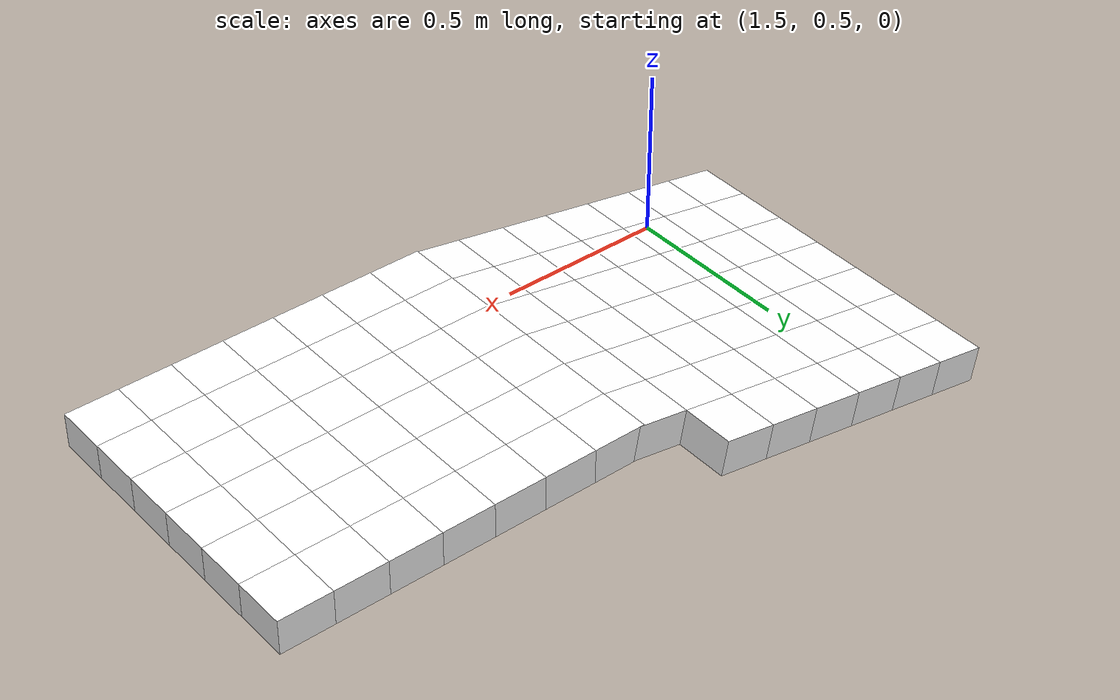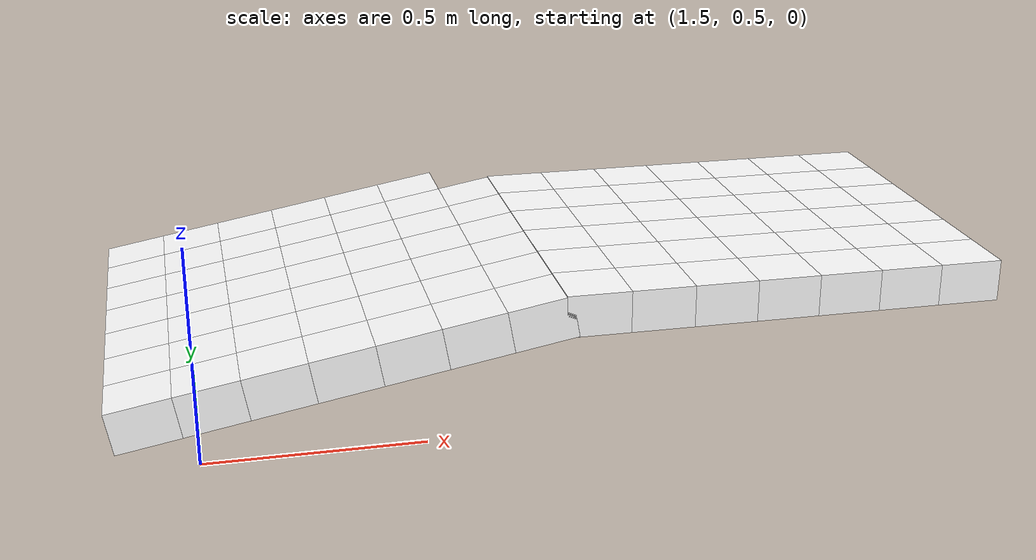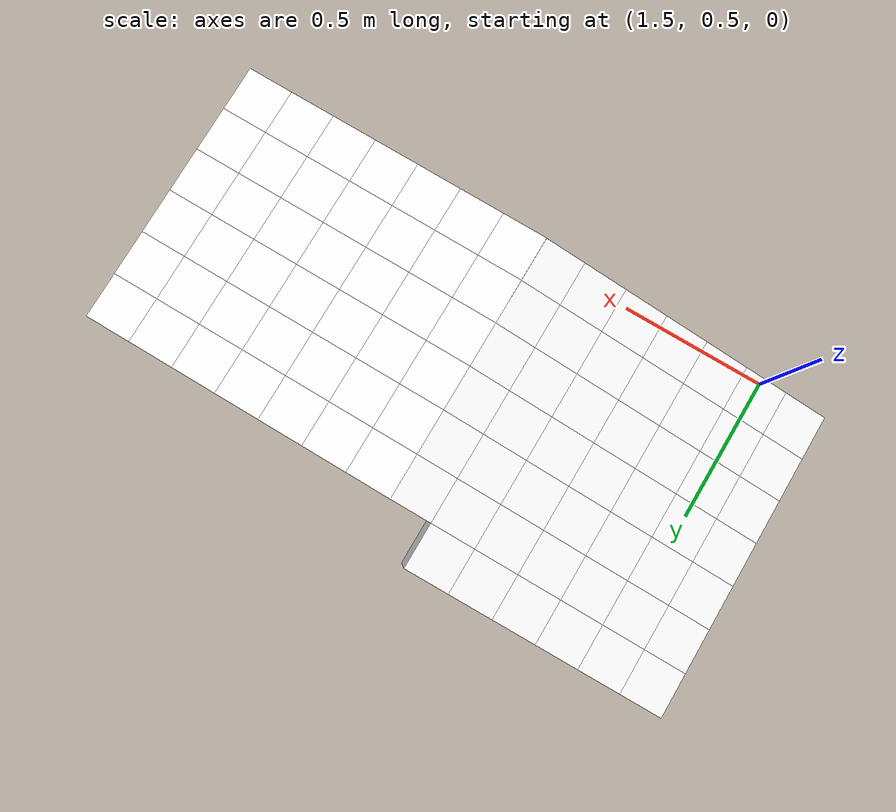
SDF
<sdf version="1.7">
 <world name="default">
  <include><uri>model://sun</uri></include>
  <model name="static_environment">
   <static>true</static>
   <link name="region_403">
    <pose>1.3858879741283245 0.6 0.09089899148607966 0.0 -0.175 0.0</pose>
    <collision name="region_403_collision">
     <geometry><box><size>0.15 0.15 0.1</size></box></geometry>
     <surface><friction><ode><mu>1.0</mu><mu2>1.0</mu2></ode></friction></surface>
    </collision>
    <visual name="region_403_visual">
     <geometry><box><size>0.15 0.15 0.1</size></box></geometry>
     <material><ambient>1.0 1.0 1.0 1.0</ambient><diffuse>1.0 1.0 1.0 1.0</diffuse></material>
    </visual>
   </link>
   <link name="region_404">
    <pose>1.5335969549640645 0.6 0.11701521212511906 0.0 -0.175 0.0</pose>
    <collision name="region_404_collision">
     <geometry><box><size>0.15 0.15 0.1</size></box></geometry>
     <surface><friction><ode><mu>1.0</mu><mu2>1.0</mu2></ode></friction></surface>
    </collision>
    <visual name="region_404_visual">
     <geometry><box><size>0.15 0.15 0.1</size></box></geometry>
     <material><ambient>1.0 1.0 1.0 1.0</ambient><diffuse>1.0 1.0 1.0 1.0</diffuse></material>
    </visual>
   </link>
   <link name="region_405">
    <pose>1.6813059357998044 0.6 0.14313143276415835 0.0 -0.175 0.0</pose>
    <collision name="region_405_collision">
     <geometry><box><size>0.15 0.15 0.1</size></box></geometry>
     <surface><friction><ode><mu>1.0</mu><mu2>1.0</mu2></ode></friction></surface>
    </collision>
    <visual name="region_405_visual">
     <geometry><box><size>0.15 0.15 0.1</size></box></geometry>
     <material><ambient>1.0 1.0 1.0 1.0</ambient><diffuse>1.0 1.0 1.0 1.0</diffuse></material>
    </visual>
   </link>
   <link name="region_406">
    <pose>1.8290149166355443 0.6 0.16924765340319775 0.0 -0.175 0.0</pose>
    <collision name="region_406_collision">
     <geometry><box><size>0.15 0.15 0.1</size></box></geometry>
     <surface><friction><ode><mu>1.0</mu><mu2>1.0</mu2></ode></friction></surface>
    </collision>
    <visual name="region_406_visual">
     <geometry><box><size>0.15 0.15 0.1</size></box></geometry>
     <material><ambient>1.0 1.0 1.0 1.0</ambient><diffuse>1.0 1.0 1.0 1.0</diffuse></material>
    </visual>
   </link>
   <link name="region_407">
    <pose>1.9767238974712842 0.6 0.19536387404223715 0.0 -0.175 0.0</pose>
    <collision name="region_407_collision">
     <geometry><box><size>0.15 0.15 0.1</size></box></geometry>
     <surface><friction><ode><mu>1.0</mu><mu2>1.0</mu2></ode></friction></surface>
    </collision>
    <visual name="region_407_visual">
     <geometry><box><size>0.15 0.15 0.1</size></box></geometry>
     <material><ambient>1.0 1.0 1.0 1.0</ambient><diffuse>1.0 1.0 1.0 1.0</diffuse></material>
    </visual>
   </link>
   <link name="region_408">
    <pose>2.124432878307025 0.6 0.22148009468127655 0.0 -0.175 0.0</pose>
    <collision name="region_408_collision">
     <geometry><box><size>0.15 0.15 0.1</size></box></geometry>
     <surface><friction><ode><mu>1.0</mu><mu2>1.0</mu2></ode></friction></surface>
    </collision>
    <visual name="region_408_visual">
     <geometry><box><size>0.15 0.15 0.1</size></box></geometry>
     <material><ambient>1.0 1.0 1.0 1.0</ambient><diffuse>1.0 1.0 1.0 1.0</diffuse></material>
    </visual>
   </link>
   <link name="region_409">
    <pose>2.2721418591427653 0.6 0.24759631532031606 0.0 -0.175 0.0</pose>
    <collision name="region_409_collision">
     <geometry><box><size>0.15 0.15 0.1</size></box></geometry>
     <surface><friction><ode><mu>1.0</mu><mu2>1.0</mu2></ode></friction></surface>
    </collision>
    <visual name="region_409_visual">
     <geometry><box><size>0.15 0.15 0.1</size></box></geometry>
     <material><ambient>1.0 1.0 1.0 1.0</ambient><diffuse>1.0 1.0 1.0 1.0</diffuse></material>
    </visual>
   </link>
   <link name="region_413">
    <pose>1.3858879741283245 0.75 0.09089899148607966 0.0 -0.175 0.0</pose>
    <collision name="region_413_collision">
     <geometry><box><size>0.15 0.15 0.1</size></box></geometry>
     <surface><friction><ode><mu>1.0</mu><mu2>1.0</mu2></ode></friction></surface>
    </collision>
    <visual name="region_413_visual">
     <geometry><box><size>0.15 0.15 0.1</size></box></geometry>
     <material><ambient>1.0 1.0 1.0 1.0</ambient><diffuse>1.0 1.0 1.0 1.0</diffuse></material>
    </visual>
   </link>
   <link name="region_414">
    <pose>1.5335969549640645 0.75 0.11701521212511906 0.0 -0.175 0.0</pose>
    <collision name="region_414_collision">
     <geometry><box><size>0.15 0.15 0.1</size></box></geometry>
     <surface><friction><ode><mu>1.0</mu><mu2>1.0</mu2></ode></friction></surface>
    </collision>
    <visual name="region_414_visual">
     <geometry><box><size>0.15 0.15 0.1</size></box></geometry>
     <material><ambient>1.0 1.0 1.0 1.0</ambient><diffuse>1.0 1.0 1.0 1.0</diffuse></material>
    </visual>
   </link>
   <link name="region_415">
    <pose>1.6813059357998044 0.75 0.14313143276415835 0.0 -0.175 0.0</pose>
    <collision name="region_415_collision">
     <geometry><box><size>0.15 0.15 0.1</size></box></geometry>
     <surface><friction><ode><mu>1.0</mu><mu2>1.0</mu2></ode></friction></surface>
    </collision>
    <visual name="region_415_visual">
     <geometry><box><size>0.15 0.15 0.1</size></box></geometry>
     <material><ambient>1.0 1.0 1.0 1.0</ambient><diffuse>1.0 1.0 1.0 1.0</diffuse></material>
    </visual>
   </link>
   <link name="region_416">
    <pose>1.8290149166355443 0.75 0.16924765340319775 0.0 -0.175 0.0</pose>
    <collision name="region_416_collision">
     <geometry><box><size>0.15 0.15 0.1</size></box></geometry>
     <surface><friction><ode><mu>1.0</mu><mu2>1.0</mu2></ode></friction></surface>
    </collision>
    <visual name="region_416_visual">
     <geometry><box><size>0.15 0.15 0.1</size></box></geometry>
     <material><ambient>1.0 1.0 1.0 1.0</ambient><diffuse>1.0 1.0 1.0 1.0</diffuse></material>
    </visual>
   </link>
   <link name="region_417">
    <pose>1.9767238974712842 0.75 0.19536387404223715 0.0 -0.175 0.0</pose>
    <collision name="region_417_collision">
     <geometry><box><size>0.15 0.15 0.1</size></box></geometry>
     <surface><friction><ode><mu>1.0</mu><mu2>1.0</mu2></ode></friction></surface>
    </collision>
    <visual name="region_417_visual">
     <geometry><box><size>0.15 0.15 0.1</size></box></geometry>
     <material><ambient>1.0 1.0 1.0 1.0</ambient><diffuse>1.0 1.0 1.0 1.0</diffuse></material>
    </visual>
   </link>
   <link name="region_418">
    <pose>2.124432878307025 0.75 0.22148009468127655 0.0 -0.175 0.0</pose>
    <collision name="region_418_collision">
     <geometry><box><size>0.15 0.15 0.1</size></box></geometry>
     <surface><friction><ode><mu>1.0</mu><mu2>1.0</mu2></ode></friction></surface>
    </collision>
    <visual name="region_418_visual">
     <geometry><box><size>0.15 0.15 0.1</size></box></geometry>
     <material><ambient>1.0 1.0 1.0 1.0</ambient><diffuse>1.0 1.0 1.0 1.0</diffuse></material>
    </visual>
   </link>
   <link name="region_419">
    <pose>2.2721418591427653 0.75 0.24759631532031606 0.0 -0.175 0.0</pose>
    <collision name="region_419_collision">
     <geometry><box><size>0.15 0.15 0.1</size></box></geometry>
     <surface><friction><ode><mu>1.0</mu><mu2>1.0</mu2></ode></friction></surface>
    </collision>
    <visual name="region_419_visual">
     <geometry><box><size>0.15 0.15 0.1</size></box></geometry>
     <material><ambient>1.0 1.0 1.0 1.0</ambient><diffuse>1.0 1.0 1.0 1.0</diffuse></material>
    </visual>
   </link>
   <link name="region_423">
    <pose>1.3858879741283245 0.8999999999999999 0.09089899148607966 0.0 -0.175 0.0</pose>
    <collision name="region_423_collision">
     <geometry><box><size>0.15 0.15 0.1</size></box></geometry>
     <surface><friction><ode><mu>1.0</mu><mu2>1.0</mu2></ode></friction></surface>
    </collision>
    <visual name="region_423_visual">
     <geometry><box><size>0.15 0.15 0.1</size></box></geometry>
     <material><ambient>1.0 1.0 1.0 1.0</ambient><diffuse>1.0 1.0 1.0 1.0</diffuse></material>
    </visual>
   </link>
   <link name="region_424">
    <pose>1.5335969549640645 0.8999999999999999 0.11701521212511906 0.0 -0.175 0.0</pose>
    <collision name="region_424_collision">
     <geometry><box><size>0.15 0.15 0.1</size></box></geometry>
     <surface><friction><ode><mu>1.0</mu><mu2>1.0</mu2></ode></friction></surface>
    </collision>
    <visual name="region_424_visual">
     <geometry><box><size>0.15 0.15 0.1</size></box></geometry>
     <material><ambient>1.0 1.0 1.0 1.0</ambient><diffuse>1.0 1.0 1.0 1.0</diffuse></material>
    </visual>
   </link>
   <link name="region_425">
    <pose>1.6813059357998044 0.8999999999999999 0.14313143276415835 0.0 -0.175 0.0</pose>
    <collision name="region_425_collision">
     <geometry><box><size>0.15 0.15 0.1</size></box></geometry>
     <surface><friction><ode><mu>1.0</mu><mu2>1.0</mu2></ode></friction></surface>
    </collision>
    <visual name="region_425_visual">
     <geometry><box><size>0.15 0.15 0.1</size></box></geometry>
     <material><ambient>1.0 1.0 1.0 1.0</ambient><diffuse>1.0 1.0 1.0 1.0</diffuse></material>
    </visual>
   </link>
   <link name="region_426">
    <pose>1.8290149166355443 0.8999999999999999 0.16924765340319775 0.0 -0.175 0.0</pose>
    <collision name="region_426_collision">
     <geometry><box><size>0.15 0.15 0.1</size></box></geometry>
     <surface><friction><ode><mu>1.0</mu><mu2>1.0</mu2></ode></friction></surface>
    </collision>
    <visual name="region_426_visual">
     <geometry><box><size>0.15 0.15 0.1</size></box></geometry>
     <material><ambient>1.0 1.0 1.0 1.0</ambient><diffuse>1.0 1.0 1.0 1.0</diffuse></material>
    </visual>
   </link>
   <link name="region_427">
    <pose>1.9767238974712842 0.8999999999999999 0.19536387404223715 0.0 -0.175 0.0</pose>
    <collision name="region_427_collision">
     <geometry><box><size>0.15 0.15 0.1</size></box></geometry>
     <surface><friction><ode><mu>1.0</mu><mu2>1.0</mu2></ode></friction></surface>
    </collision>
    <visual name="region_427_visual">
     <geometry><box><size>0.15 0.15 0.1</size></box></geometry>
     <material><ambient>1.0 1.0 1.0 1.0</ambient><diffuse>1.0 1.0 1.0 1.0</diffuse></material>
    </visual>
   </link>
   <link name="region_428">
    <pose>2.124432878307025 0.8999999999999999 0.22148009468127655 0.0 -0.175 0.0</pose>
    <collision name="region_428_collision">
     <geometry><box><size>0.15 0.15 0.1</size></box></geometry>
     <surface><friction><ode><mu>1.0</mu><mu2>1.0</mu2></ode></friction></surface>
    </collision>
    <visual name="region_428_visual">
     <geometry><box><size>0.15 0.15 0.1</size></box></geometry>
     <material><ambient>1.0 1.0 1.0 1.0</ambient><diffuse>1.0 1.0 1.0 1.0</diffuse></material>
    </visual>
   </link>
   <link name="region_429">
    <pose>2.2721418591427653 0.8999999999999999 0.24759631532031606 0.0 -0.175 0.0</pose>
    <collision name="region_429_collision">
     <geometry><box><size>0.15 0.15 0.1</size></box></geometry>
     <surface><friction><ode><mu>1.0</mu><mu2>1.0</mu2></ode></friction></surface>
    </collision>
    <visual name="region_429_visual">
     <geometry><box><size>0.15 0.15 0.1</size></box></geometry>
     <material><ambient>1.0 1.0 1.0 1.0</ambient><diffuse>1.0 1.0 1.0 1.0</diffuse></material>
    </visual>
   </link>
   <link name="region_433">
    <pose>1.3858879741283245 1.0499999999999998 0.09089899148607966 0.0 -0.175 0.0</pose>
    <collision name="region_433_collision">
     <geometry><box><size>0.15 0.15 0.1</size></box></geometry>
     <surface><friction><ode><mu>1.0</mu><mu2>1.0</mu2></ode></friction></surface>
    </collision>
    <visual name="region_433_visual">
     <geometry><box><size>0.15 0.15 0.1</size></box></geometry>
     <material><ambient>1.0 1.0 1.0 1.0</ambient><diffuse>1.0 1.0 1.0 1.0</diffuse></material>
    </visual>
   </link>
   <link name="region_434">
    <pose>1.5335969549640645 1.0499999999999998 0.11701521212511906 0.0 -0.175 0.0</pose>
    <collision name="region_434_collision">
     <geometry><box><size>0.15 0.15 0.1</size></box></geometry>
     <surface><friction><ode><mu>1.0</mu><mu2>1.0</mu2></ode></friction></surface>
    </collision>
    <visual name="region_434_visual">
     <geometry><box><size>0.15 0.15 0.1</size></box></geometry>
     <material><ambient>1.0 1.0 1.0 1.0</ambient><diffuse>1.0 1.0 1.0 1.0</diffuse></material>
    </visual>
   </link>
   <link name="region_435">
    <pose>1.6813059357998044 1.0499999999999998 0.14313143276415835 0.0 -0.175 0.0</pose>
    <collision name="region_435_collision">
     <geometry><box><size>0.15 0.15 0.1</size></box></geometry>
     <surface><friction><ode><mu>1.0</mu><mu2>1.0</mu2></ode></friction></surface>
    </collision>
    <visual name="region_435_visual">
     <geometry><box><size>0.15 0.15 0.1</size></box></geometry>
     <material><ambient>1.0 1.0 1.0 1.0</ambient><diffuse>1.0 1.0 1.0 1.0</diffuse></material>
    </visual>
   </link>
   <link name="region_436">
    <pose>1.8290149166355443 1.0499999999999998 0.16924765340319775 0.0 -0.175 0.0</pose>
    <collision name="region_436_collision">
     <geometry><box><size>0.15 0.15 0.1</size></box></geometry>
     <surface><friction><ode><mu>1.0</mu><mu2>1.0</mu2></ode></friction></surface>
    </collision>
    <visual name="region_436_visual">
     <geometry><box><size>0.15 0.15 0.1</size></box></geometry>
     <material><ambient>1.0 1.0 1.0 1.0</ambient><diffuse>1.0 1.0 1.0 1.0</diffuse></material>
    </visual>
   </link>
   <link name="region_437">
    <pose>1.9767238974712842 1.0499999999999998 0.19536387404223715 0.0 -0.175 0.0</pose>
    <collision name="region_437_collision">
     <geometry><box><size>0.15 0.15 0.1</size></box></geometry>
     <surface><friction><ode><mu>1.0</mu><mu2>1.0</mu2></ode></friction></surface>
    </collision>
    <visual name="region_437_visual">
     <geometry><box><size>0.15 0.15 0.1</size></box></geometry>
     <material><ambient>1.0 1.0 1.0 1.0</ambient><diffuse>1.0 1.0 1.0 1.0</diffuse></material>
    </visual>
   </link>
   <link name="region_438">
    <pose>2.124432878307025 1.0499999999999998 0.22148009468127655 0.0 -0.175 0.0</pose>
    <collision name="region_438_collision">
     <geometry><box><size>0.15 0.15 0.1</size></box></geometry>
     <surface><friction><ode><mu>1.0</mu><mu2>1.0</mu2></ode></friction></surface>
    </collision>
    <visual name="region_438_visual">
     <geometry><box><size>0.15 0.15 0.1</size></box></geometry>
     <material><ambient>1.0 1.0 1.0 1.0</ambient><diffuse>1.0 1.0 1.0 1.0</diffuse></material>
    </visual>
   </link>
   <link name="region_439">
    <pose>2.2721418591427653 1.0499999999999998 0.24759631532031606 0.0 -0.175 0.0</pose>
    <collision name="region_439_collision">
     <geometry><box><size>0.15 0.15 0.1</size></box></geometry>
     <surface><friction><ode><mu>1.0</mu><mu2>1.0</mu2></ode></friction></surface>
    </collision>
    <visual name="region_439_visual">
     <geometry><box><size>0.15 0.15 0.1</size></box></geometry>
     <material><ambient>1.0 1.0 1.0 1.0</ambient><diffuse>1.0 1.0 1.0 1.0</diffuse></material>
    </visual>
   </link>
   <link name="region_443">
    <pose>1.3858879741283245 1.2 0.09089899148607966 0.0 -0.175 0.0</pose>
    <collision name="region_443_collision">
     <geometry><box><size>0.15 0.15 0.1</size></box></geometry>
     <surface><friction><ode><mu>1.0</mu><mu2>1.0</mu2></ode></friction></surface>
    </collision>
    <visual name="region_443_visual">
     <geometry><box><size>0.15 0.15 0.1</size></box></geometry>
     <material><ambient>1.0 1.0 1.0 1.0</ambient><diffuse>1.0 1.0 1.0 1.0</diffuse></material>
    </visual>
   </link>
   <link name="region_444">
    <pose>1.5335969549640645 1.2 0.11701521212511906 0.0 -0.175 0.0</pose>
    <collision name="region_444_collision">
     <geometry><box><size>0.15 0.15 0.1</size></box></geometry>
     <surface><friction><ode><mu>1.0</mu><mu2>1.0</mu2></ode></friction></surface>
    </collision>
    <visual name="region_444_visual">
     <geometry><box><size>0.15 0.15 0.1</size></box></geometry>
     <material><ambient>1.0 1.0 1.0 1.0</ambient><diffuse>1.0 1.0 1.0 1.0</diffuse></material>
    </visual>
   </link>
   <link name="region_445">
    <pose>1.6813059357998044 1.2 0.14313143276415835 0.0 -0.175 0.0</pose>
    <collision name="region_445_collision">
     <geometry><box><size>0.15 0.15 0.1</size></box></geometry>
     <surface><friction><ode><mu>1.0</mu><mu2>1.0</mu2></ode></friction></surface>
    </collision>
    <visual name="region_445_visual">
     <geometry><box><size>0.15 0.15 0.1</size></box></geometry>
     <material><ambient>1.0 1.0 1.0 1.0</ambient><diffuse>1.0 1.0 1.0 1.0</diffuse></material>
    </visual>
   </link>
   <link name="region_446">
    <pose>1.8290149166355443 1.2 0.16924765340319775 0.0 -0.175 0.0</pose>
    <collision name="region_446_collision">
     <geometry><box><size>0.15 0.15 0.1</size></box></geometry>
     <surface><friction><ode><mu>1.0</mu><mu2>1.0</mu2></ode></friction></surface>
    </collision>
    <visual name="region_446_visual">
     <geometry><box><size>0.15 0.15 0.1</size></box></geometry>
     <material><ambient>1.0 1.0 1.0 1.0</ambient><diffuse>1.0 1.0 1.0 1.0</diffuse></material>
    </visual>
   </link>
   <link name="region_447">
    <pose>1.9767238974712842 1.2 0.19536387404223715 0.0 -0.175 0.0</pose>
    <collision name="region_447_collision">
     <geometry><box><size>0.15 0.15 0.1</size></box></geometry>
     <surface><friction><ode><mu>1.0</mu><mu2>1.0</mu2></ode></friction></surface>
    </collision>
    <visual name="region_447_visual">
     <geometry><box><size>0.15 0.15 0.1</size></box></geometry>
     <material><ambient>1.0 1.0 1.0 1.0</ambient><diffuse>1.0 1.0 1.0 1.0</diffuse></material>
    </visual>
   </link>
   <link name="region_448">
    <pose>2.124432878307025 1.2 0.22148009468127655 0.0 -0.175 0.0</pose>
    <collision name="region_448_collision">
     <geometry><box><size>0.15 0.15 0.1</size></box></geometry>
     <surface><friction><ode><mu>1.0</mu><mu2>1.0</mu2></ode></friction></surface>
    </collision>
    <visual name="region_448_visual">
     <geometry><box><size>0.15 0.15 0.1</size></box></geometry>
     <material><ambient>1.0 1.0 1.0 1.0</ambient><diffuse>1.0 1.0 1.0 1.0</diffuse></material>
    </visual>
   </link>
   <link name="region_449">
    <pose>2.2721418591427653 1.2 0.24759631532031606 0.0 -0.175 0.0</pose>
    <collision name="region_449_collision">
     <geometry><box><size>0.15 0.15 0.1</size></box></geometry>
     <surface><friction><ode><mu>1.0</mu><mu2>1.0</mu2></ode></friction></surface>
    </collision>
    <visual name="region_449_visual">
     <geometry><box><size>0.15 0.15 0.1</size></box></geometry>
     <material><ambient>1.0 1.0 1.0 1.0</ambient><diffuse>1.0 1.0 1.0 1.0</diffuse></material>
    </visual>
   </link>
   <link name="region_453">
    <pose>1.3858879741283245 1.35 0.09089899148607966 0.0 -0.175 0.0</pose>
    <collision name="region_453_collision">
     <geometry><box><size>0.15 0.15 0.1</size></box></geometry>
     <surface><friction><ode><mu>1.0</mu><mu2>1.0</mu2></ode></friction></surface>
    </collision>
    <visual name="region_453_visual">
     <geometry><box><size>0.15 0.15 0.1</size></box></geometry>
     <material><ambient>1.0 1.0 1.0 1.0</ambient><diffuse>1.0 1.0 1.0 1.0</diffuse></material>
    </visual>
   </link>
   <link name="region_454">
    <pose>1.5335969549640645 1.35 0.11701521212511906 0.0 -0.175 0.0</pose>
    <collision name="region_454_collision">
     <geometry><box><size>0.15 0.15 0.1</size></box></geometry>
     <surface><friction><ode><mu>1.0</mu><mu2>1.0</mu2></ode></friction></surface>
    </collision>
    <visual name="region_454_visual">
     <geometry><box><size>0.15 0.15 0.1</size></box></geometry>
     <material><ambient>1.0 1.0 1.0 1.0</ambient><diffuse>1.0 1.0 1.0 1.0</diffuse></material>
    </visual>
   </link>
   <link name="region_455">
    <pose>1.6813059357998044 1.35 0.14313143276415835 0.0 -0.175 0.0</pose>
    <collision name="region_455_collision">
     <geometry><box><size>0.15 0.15 0.1</size></box></geometry>
     <surface><friction><ode><mu>1.0</mu><mu2>1.0</mu2></ode></friction></surface>
    </collision>
    <visual name="region_455_visual">
     <geometry><box><size>0.15 0.15 0.1</size></box></geometry>
     <material><ambient>1.0 1.0 1.0 1.0</ambient><diffuse>1.0 1.0 1.0 1.0</diffuse></material>
    </visual>
   </link>
   <link name="region_456">
    <pose>1.8290149166355443 1.35 0.16924765340319775 0.0 -0.175 0.0</pose>
    <collision name="region_456_collision">
     <geometry><box><size>0.15 0.15 0.1</size></box></geometry>
     <surface><friction><ode><mu>1.0</mu><mu2>1.0</mu2></ode></friction></surface>
    </collision>
    <visual name="region_456_visual">
     <geometry><box><size>0.15 0.15 0.1</size></box></geometry>
     <material><ambient>1.0 1.0 1.0 1.0</ambient><diffuse>1.0 1.0 1.0 1.0</diffuse></material>
    </visual>
   </link>
   <link name="region_457">
    <pose>1.9767238974712842 1.35 0.19536387404223715 0.0 -0.175 0.0</pose>
    <collision name="region_457_collision">
     <geometry><box><size>0.15 0.15 0.1</size></box></geometry>
     <surface><friction><ode><mu>1.0</mu><mu2>1.0</mu2></ode></friction></surface>
    </collision>
    <visual name="region_457_visual">
     <geometry><box><size>0.15 0.15 0.1</size></box></geometry>
     <material><ambient>1.0 1.0 1.0 1.0</ambient><diffuse>1.0 1.0 1.0 1.0</diffuse></material>
    </visual>
   </link>
   <link name="region_458">
    <pose>2.124432878307025 1.35 0.22148009468127655 0.0 -0.175 0.0</pose>
    <collision name="region_458_collision">
     <geometry><box><size>0.15 0.15 0.1</size></box></geometry>
     <surface><friction><ode><mu>1.0</mu><mu2>1.0</mu2></ode></friction></surface>
    </collision>
    <visual name="region_458_visual">
     <geometry><box><size>0.15 0.15 0.1</size></box></geometry>
     <material><ambient>1.0 1.0 1.0 1.0</ambient><diffuse>1.0 1.0 1.0 1.0</diffuse></material>
    </visual>
   </link>
   <link name="region_459">
    <pose>2.2721418591427653 1.35 0.24759631532031606 0.0 -0.175 0.0</pose>
    <collision name="region_459_collision">
     <geometry><box><size>0.15 0.15 0.1</size></box></geometry>
     <surface><friction><ode><mu>1.0</mu><mu2>1.0</mu2></ode></friction></surface>
    </collision>
    <visual name="region_459_visual">
     <geometry><box><size>0.15 0.15 0.1</size></box></geometry>
     <material><ambient>1.0 1.0 1.0 1.0</ambient><diffuse>1.0 1.0 1.0 1.0</diffuse></material>
    </visual>
   </link>
   <link name="region_463">
    <pose>1.3858879741283245 1.5 0.09089899148607966 0.0 -0.175 0.0</pose>
    <collision name="region_463_collision">
     <geometry><box><size>0.15 0.15 0.1</size></box></geometry>
     <surface><friction><ode><mu>1.0</mu><mu2>1.0</mu2></ode></friction></surface>
    </collision>
    <visual name="region_463_visual">
     <geometry><box><size>0.15 0.15 0.1</size></box></geometry>
     <material><ambient>1.0 1.0 1.0 1.0</ambient><diffuse>1.0 1.0 1.0 1.0</diffuse></material>
    </visual>
   </link>
   <link name="region_464">
    <pose>1.5335969549640645 1.5 0.11701521212511906 0.0 -0.175 0.0</pose>
    <collision name="region_464_collision">
     <geometry><box><size>0.15 0.15 0.1</size></box></geometry>
     <surface><friction><ode><mu>1.0</mu><mu2>1.0</mu2></ode></friction></surface>
    </collision>
    <visual name="region_464_visual">
     <geometry><box><size>0.15 0.15 0.1</size></box></geometry>
     <material><ambient>1.0 1.0 1.0 1.0</ambient><diffuse>1.0 1.0 1.0 1.0</diffuse></material>
    </visual>
   </link>
   <link name="region_465">
    <pose>1.6813059357998044 1.5 0.14313143276415835 0.0 -0.175 0.0</pose>
    <collision name="region_465_collision">
     <geometry><box><size>0.15 0.15 0.1</size></box></geometry>
     <surface><friction><ode><mu>1.0</mu><mu2>1.0</mu2></ode></friction></surface>
    </collision>
    <visual name="region_465_visual">
     <geometry><box><size>0.15 0.15 0.1</size></box></geometry>
     <material><ambient>1.0 1.0 1.0 1.0</ambient><diffuse>1.0 1.0 1.0 1.0</diffuse></material>
    </visual>
   </link>
   <link name="region_466">
    <pose>1.8290149166355443 1.5 0.16924765340319775 0.0 -0.175 0.0</pose>
    <collision name="region_466_collision">
     <geometry><box><size>0.15 0.15 0.1</size></box></geometry>
     <surface><friction><ode><mu>1.0</mu><mu2>1.0</mu2></ode></friction></surface>
    </collision>
    <visual name="region_466_visual">
     <geometry><box><size>0.15 0.15 0.1</size></box></geometry>
     <material><ambient>1.0 1.0 1.0 1.0</ambient><diffuse>1.0 1.0 1.0 1.0</diffuse></material>
    </visual>
   </link>
   <link name="region_467">
    <pose>1.9767238974712842 1.5 0.19536387404223715 0.0 -0.175 0.0</pose>
    <collision name="region_467_collision">
     <geometry><box><size>0.15 0.15 0.1</size></box></geometry>
     <surface><friction><ode><mu>1.0</mu><mu2>1.0</mu2></ode></friction></surface>
    </collision>
    <visual name="region_467_visual">
     <geometry><box><size>0.15 0.15 0.1</size></box></geometry>
     <material><ambient>1.0 1.0 1.0 1.0</ambient><diffuse>1.0 1.0 1.0 1.0</diffuse></material>
    </visual>
   </link>
   <link name="region_468">
    <pose>2.124432878307025 1.5 0.22148009468127655 0.0 -0.175 0.0</pose>
    <collision name="region_468_collision">
     <geometry><box><size>0.15 0.15 0.1</size></box></geometry>
     <surface><friction><ode><mu>1.0</mu><mu2>1.0</mu2></ode></friction></surface>
    </collision>
    <visual name="region_468_visual">
     <geometry><box><size>0.15 0.15 0.1</size></box></geometry>
     <material><ambient>1.0 1.0 1.0 1.0</ambient><diffuse>1.0 1.0 1.0 1.0</diffuse></material>
    </visual>
   </link>
   <link name="region_600">
    <pose>2.4000000000000004 0.6 0.26 0.0 0.0 0.0</pose>
    <collision name="region_600_collision">
     <geometry><box><size>0.15 0.15 0.1</size></box></geometry>
     <surface><friction><ode><mu>1.0</mu><mu2>1.0</mu2></ode></friction></surface>
    </collision>
    <visual name="region_600_visual">
     <geometry><box><size>0.15 0.15 0.1</size></box></geometry>
     <material><ambient>1.0 1.0 1.0 1.0</ambient><diffuse>1.0 1.0 1.0 1.0</diffuse></material>
    </visual>
   </link>
   <link name="region_601">
    <pose>2.5500000000000007 0.6 0.26 0.0 0.0 0.0</pose>
    <collision name="region_601_collision">
     <geometry><box><size>0.15 0.15 0.1</size></box></geometry>
     <surface><friction><ode><mu>1.0</mu><mu2>1.0</mu2></ode></friction></surface>
    </collision>
    <visual name="region_601_visual">
     <geometry><box><size>0.15 0.15 0.1</size></box></geometry>
     <material><ambient>1.0 1.0 1.0 1.0</ambient><diffuse>1.0 1.0 1.0 1.0</diffuse></material>
    </visual>
   </link>
   <link name="region_602">
    <pose>2.700000000000001 0.6 0.26 0.0 0.0 0.0</pose>
    <collision name="region_602_collision">
     <geometry><box><size>0.15 0.15 0.1</size></box></geometry>
     <surface><friction><ode><mu>1.0</mu><mu2>1.0</mu2></ode></friction></surface>
    </collision>
    <visual name="region_602_visual">
     <geometry><box><size>0.15 0.15 0.1</size></box></geometry>
     <material><ambient>1.0 1.0 1.0 1.0</ambient><diffuse>1.0 1.0 1.0 1.0</diffuse></material>
    </visual>
   </link>
   <link name="region_603">
    <pose>2.8500000000000014 0.6 0.26 0.0 0.0 0.0</pose>
    <collision name="region_603_collision">
     <geometry><box><size>0.15 0.15 0.1</size></box></geometry>
     <surface><friction><ode><mu>1.0</mu><mu2>1.0</mu2></ode></friction></surface>
    </collision>
    <visual name="region_603_visual">
     <geometry><box><size>0.15 0.15 0.1</size></box></geometry>
     <material><ambient>1.0 1.0 1.0 1.0</ambient><diffuse>1.0 1.0 1.0 1.0</diffuse></material>
    </visual>
   </link>
   <link name="region_604">
    <pose>3.0000000000000018 0.6 0.26 0.0 0.0 0.0</pose>
    <collision name="region_604_collision">
     <geometry><box><size>0.15 0.15 0.1</size></box></geometry>
     <surface><friction><ode><mu>1.0</mu><mu2>1.0</mu2></ode></friction></surface>
    </collision>
    <visual name="region_604_visual">
     <geometry><box><size>0.15 0.15 0.1</size></box></geometry>
     <material><ambient>1.0 1.0 1.0 1.0</ambient><diffuse>1.0 1.0 1.0 1.0</diffuse></material>
    </visual>
   </link>
   <link name="region_605">
    <pose>3.150000000000002 0.6 0.26 0.0 0.0 0.0</pose>
    <collision name="region_605_collision">
     <geometry><box><size>0.15 0.15 0.1</size></box></geometry>
     <surface><friction><ode><mu>1.0</mu><mu2>1.0</mu2></ode></friction></surface>
    </collision>
    <visual name="region_605_visual">
     <geometry><box><size>0.15 0.15 0.1</size></box></geometry>
     <material><ambient>1.0 1.0 1.0 1.0</ambient><diffuse>1.0 1.0 1.0 1.0</diffuse></material>
    </visual>
   </link>
   <link name="region_606">
    <pose>3.3000000000000025 0.6 0.26 0.0 0.0 0.0</pose>
    <collision name="region_606_collision">
     <geometry><box><size>0.15 0.15 0.1</size></box></geometry>
     <surface><friction><ode><mu>1.0</mu><mu2>1.0</mu2></ode></friction></surface>
    </collision>
    <visual name="region_606_visual">
     <geometry><box><size>0.15 0.15 0.1</size></box></geometry>
     <material><ambient>1.0 1.0 1.0 1.0</ambient><diffuse>1.0 1.0 1.0 1.0</diffuse></material>
    </visual>
   </link>
   <link name="region_620">
    <pose>2.4000000000000004 0.75 0.26 0.0 0.0 0.0</pose>
    <collision name="region_620_collision">
     <geometry><box><size>0.15 0.15 0.1</size></box></geometry>
     <surface><friction><ode><mu>1.0</mu><mu2>1.0</mu2></ode></friction></surface>
    </collision>
    <visual name="region_620_visual">
     <geometry><box><size>0.15 0.15 0.1</size></box></geometry>
     <material><ambient>1.0 1.0 1.0 1.0</ambient><diffuse>1.0 1.0 1.0 1.0</diffuse></material>
    </visual>
   </link>
   <link name="region_621">
    <pose>2.5500000000000007 0.75 0.26 0.0 0.0 0.0</pose>
    <collision name="region_621_collision">
     <geometry><box><size>0.15 0.15 0.1</size></box></geometry>
     <surface><friction><ode><mu>1.0</mu><mu2>1.0</mu2></ode></friction></surface>
    </collision>
    <visual name="region_621_visual">
     <geometry><box><size>0.15 0.15 0.1</size></box></geometry>
     <material><ambient>1.0 1.0 1.0 1.0</ambient><diffuse>1.0 1.0 1.0 1.0</diffuse></material>
    </visual>
   </link>
   <link name="region_622">
    <pose>2.700000000000001 0.75 0.26 0.0 0.0 0.0</pose>
    <collision name="region_622_collision">
     <geometry><box><size>0.15 0.15 0.1</size></box></geometry>
     <surface><friction><ode><mu>1.0</mu><mu2>1.0</mu2></ode></friction></surface>
    </collision>
    <visual name="region_622_visual">
     <geometry><box><size>0.15 0.15 0.1</size></box></geometry>
     <material><ambient>1.0 1.0 1.0 1.0</ambient><diffuse>1.0 1.0 1.0 1.0</diffuse></material>
    </visual>
   </link>
   <link name="region_623">
    <pose>2.8500000000000014 0.75 0.26 0.0 0.0 0.0</pose>
    <collision name="region_623_collision">
     <geometry><box><size>0.15 0.15 0.1</size></box></geometry>
     <surface><friction><ode><mu>1.0</mu><mu2>1.0</mu2></ode></friction></surface>
    </collision>
    <visual name="region_623_visual">
     <geometry><box><size>0.15 0.15 0.1</size></box></geometry>
     <material><ambient>1.0 1.0 1.0 1.0</ambient><diffuse>1.0 1.0 1.0 1.0</diffuse></material>
    </visual>
   </link>
   <link name="region_624">
    <pose>3.0000000000000018 0.75 0.26 0.0 0.0 0.0</pose>
    <collision name="region_624_collision">
     <geometry><box><size>0.15 0.15 0.1</size></box></geometry>
     <surface><friction><ode><mu>1.0</mu><mu2>1.0</mu2></ode></friction></surface>
    </collision>
    <visual name="region_624_visual">
     <geometry><box><size>0.15 0.15 0.1</size></box></geometry>
     <material><ambient>1.0 1.0 1.0 1.0</ambient><diffuse>1.0 1.0 1.0 1.0</diffuse></material>
    </visual>
   </link>
   <link name="region_625">
    <pose>3.150000000000002 0.75 0.26 0.0 0.0 0.0</pose>
    <collision name="region_625_collision">
     <geometry><box><size>0.15 0.15 0.1</size></box></geometry>
     <surface><friction><ode><mu>1.0</mu><mu2>1.0</mu2></ode></friction></surface>
    </collision>
    <visual name="region_625_visual">
     <geometry><box><size>0.15 0.15 0.1</size></box></geometry>
     <material><ambient>1.0 1.0 1.0 1.0</ambient><diffuse>1.0 1.0 1.0 1.0</diffuse></material>
    </visual>
   </link>
   <link name="region_626">
    <pose>3.3000000000000025 0.75 0.26 0.0 0.0 0.0</pose>
    <collision name="region_626_collision">
     <geometry><box><size>0.15 0.15 0.1</size></box></geometry>
     <surface><friction><ode><mu>1.0</mu><mu2>1.0</mu2></ode></friction></surface>
    </collision>
    <visual name="region_626_visual">
     <geometry><box><size>0.15 0.15 0.1</size></box></geometry>
     <material><ambient>1.0 1.0 1.0 1.0</ambient><diffuse>1.0 1.0 1.0 1.0</diffuse></material>
    </visual>
   </link>
   <link name="region_640">
    <pose>2.4000000000000004 0.8999999999999999 0.26 0.0 0.0 0.0</pose>
    <collision name="region_640_collision">
     <geometry><box><size>0.15 0.15 0.1</size></box></geometry>
     <surface><friction><ode><mu>1.0</mu><mu2>1.0</mu2></ode></friction></surface>
    </collision>
    <visual name="region_640_visual">
     <geometry><box><size>0.15 0.15 0.1</size></box></geometry>
     <material><ambient>1.0 1.0 1.0 1.0</ambient><diffuse>1.0 1.0 1.0 1.0</diffuse></material>
    </visual>
   </link>
   <link name="region_641">
    <pose>2.5500000000000007 0.8999999999999999 0.26 0.0 0.0 0.0</pose>
    <collision name="region_641_collision">
     <geometry><box><size>0.15 0.15 0.1</size></box></geometry>
     <surface><friction><ode><mu>1.0</mu><mu2>1.0</mu2></ode></friction></surface>
    </collision>
    <visual name="region_641_visual">
     <geometry><box><size>0.15 0.15 0.1</size></box></geometry>
     <material><ambient>1.0 1.0 1.0 1.0</ambient><diffuse>1.0 1.0 1.0 1.0</diffuse></material>
    </visual>
   </link>
   <link name="region_642">
    <pose>2.700000000000001 0.8999999999999999 0.26 0.0 0.0 0.0</pose>
    <collision name="region_642_collision">
     <geometry><box><size>0.15 0.15 0.1</size></box></geometry>
     <surface><friction><ode><mu>1.0</mu><mu2>1.0</mu2></ode></friction></surface>
    </collision>
    <visual name="region_642_visual">
     <geometry><box><size>0.15 0.15 0.1</size></box></geometry>
     <material><ambient>1.0 1.0 1.0 1.0</ambient><diffuse>1.0 1.0 1.0 1.0</diffuse></material>
    </visual>
   </link>
   <link name="region_643">
    <pose>2.8500000000000014 0.8999999999999999 0.26 0.0 0.0 0.0</pose>
    <collision name="region_643_collision">
     <geometry><box><size>0.15 0.15 0.1</size></box></geometry>
     <surface><friction><ode><mu>1.0</mu><mu2>1.0</mu2></ode></friction></surface>
    </collision>
    <visual name="region_643_visual">
     <geometry><box><size>0.15 0.15 0.1</size></box></geometry>
     <material><ambient>1.0 1.0 1.0 1.0</ambient><diffuse>1.0 1.0 1.0 1.0</diffuse></material>
    </visual>
   </link>
   <link name="region_644">
    <pose>3.0000000000000018 0.8999999999999999 0.26 0.0 0.0 0.0</pose>
    <collision name="region_644_collision">
     <geometry><box><size>0.15 0.15 0.1</size></box></geometry>
     <surface><friction><ode><mu>1.0</mu><mu2>1.0</mu2></ode></friction></surface>
    </collision>
    <visual name="region_644_visual">
     <geometry><box><size>0.15 0.15 0.1</size></box></geometry>
     <material><ambient>1.0 1.0 1.0 1.0</ambient><diffuse>1.0 1.0 1.0 1.0</diffuse></material>
    </visual>
   </link>
   <link name="region_645">
    <pose>3.150000000000002 0.8999999999999999 0.26 0.0 0.0 0.0</pose>
    <collision name="region_645_collision">
     <geometry><box><size>0.15 0.15 0.1</size></box></geometry>
     <surface><friction><ode><mu>1.0</mu><mu2>1.0</mu2></ode></friction></surface>
    </collision>
    <visual name="region_645_visual">
     <geometry><box><size>0.15 0.15 0.1</size></box></geometry>
     <material><ambient>1.0 1.0 1.0 1.0</ambient><diffuse>1.0 1.0 1.0 1.0</diffuse></material>
    </visual>
   </link>
   <link name="region_646">
    <pose>3.3000000000000025 0.8999999999999999 0.26 0.0 0.0 0.0</pose>
    <collision name="region_646_collision">
     <geometry><box><size>0.15 0.15 0.1</size></box></geometry>
     <surface><friction><ode><mu>1.0</mu><mu2>1.0</mu2></ode></friction></surface>
    </collision>
    <visual name="region_646_visual">
     <geometry><box><size>0.15 0.15 0.1</size></box></geometry>
     <material><ambient>1.0 1.0 1.0 1.0</ambient><diffuse>1.0 1.0 1.0 1.0</diffuse></material>
    </visual>
   </link>
   <link name="region_660">
    <pose>2.4000000000000004 1.0499999999999998 0.26 0.0 0.0 0.0</pose>
    <collision name="region_660_collision">
     <geometry><box><size>0.15 0.15 0.1</size></box></geometry>
     <surface><friction><ode><mu>1.0</mu><mu2>1.0</mu2></ode></friction></surface>
    </collision>
    <visual name="region_660_visual">
     <geometry><box><size>0.15 0.15 0.1</size></box></geometry>
     <material><ambient>1.0 1.0 1.0 1.0</ambient><diffuse>1.0 1.0 1.0 1.0</diffuse></material>
    </visual>
   </link>
   <link name="region_661">
    <pose>2.5500000000000007 1.0499999999999998 0.26 0.0 0.0 0.0</pose>
    <collision name="region_661_collision">
     <geometry><box><size>0.15 0.15 0.1</size></box></geometry>
     <surface><friction><ode><mu>1.0</mu><mu2>1.0</mu2></ode></friction></surface>
    </collision>
    <visual name="region_661_visual">
     <geometry><box><size>0.15 0.15 0.1</size></box></geometry>
     <material><ambient>1.0 1.0 1.0 1.0</ambient><diffuse>1.0 1.0 1.0 1.0</diffuse></material>
    </visual>
   </link>
   <link name="region_662">
    <pose>2.700000000000001 1.0499999999999998 0.26 0.0 0.0 0.0</pose>
    <collision name="region_662_collision">
     <geometry><box><size>0.15 0.15 0.1</size></box></geometry>
     <surface><friction><ode><mu>1.0</mu><mu2>1.0</mu2></ode></friction></surface>
    </collision>
    <visual name="region_662_visual">
     <geometry><box><size>0.15 0.15 0.1</size></box></geometry>
     <material><ambient>1.0 1.0 1.0 1.0</ambient><diffuse>1.0 1.0 1.0 1.0</diffuse></material>
    </visual>
   </link>
   <link name="region_663">
    <pose>2.8500000000000014 1.0499999999999998 0.26 0.0 0.0 0.0</pose>
    <collision name="region_663_collision">
     <geometry><box><size>0.15 0.15 0.1</size></box></geometry>
     <surface><friction><ode><mu>1.0</mu><mu2>1.0</mu2></ode></friction></surface>
    </collision>
    <visual name="region_663_visual">
     <geometry><box><size>0.15 0.15 0.1</size></box></geometry>
     <material><ambient>1.0 1.0 1.0 1.0</ambient><diffuse>1.0 1.0 1.0 1.0</diffuse></material>
    </visual>
   </link>
   <link name="region_664">
    <pose>3.0000000000000018 1.0499999999999998 0.26 0.0 0.0 0.0</pose>
    <collision name="region_664_collision">
     <geometry><box><size>0.15 0.15 0.1</size></box></geometry>
     <surface><friction><ode><mu>1.0</mu><mu2>1.0</mu2></ode></friction></surface>
    </collision>
    <visual name="region_664_visual">
     <geometry><box><size>0.15 0.15 0.1</size></box></geometry>
     <material><ambient>1.0 1.0 1.0 1.0</ambient><diffuse>1.0 1.0 1.0 1.0</diffuse></material>
    </visual>
   </link>
   <link name="region_665">
    <pose>3.150000000000002 1.0499999999999998 0.26 0.0 0.0 0.0</pose>
    <collision name="region_665_collision">
     <geometry><box><size>0.15 0.15 0.1</size></box></geometry>
     <surface><friction><ode><mu>1.0</mu><mu2>1.0</mu2></ode></friction></surface>
    </collision>
    <visual name="region_665_visual">
     <geometry><box><size>0.15 0.15 0.1</size></box></geometry>
     <material><ambient>1.0 1.0 1.0 1.0</ambient><diffuse>1.0 1.0 1.0 1.0</diffuse></material>
    </visual>
   </link>
   <link name="region_666">
    <pose>3.3000000000000025 1.0499999999999998 0.26 0.0 0.0 0.0</pose>
    <collision name="region_666_collision">
     <geometry><box><size>0.15 0.15 0.1</size></box></geometry>
     <surface><friction><ode><mu>1.0</mu><mu2>1.0</mu2></ode></friction></surface>
    </collision>
    <visual name="region_666_visual">
     <geometry><box><size>0.15 0.15 0.1</size></box></geometry>
     <material><ambient>1.0 1.0 1.0 1.0</ambient><diffuse>1.0 1.0 1.0 1.0</diffuse></material>
    </visual>
   </link>
   <link name="region_680">
    <pose>2.4000000000000004 1.2 0.26 0.0 0.0 0.0</pose>
    <collision name="region_680_collision">
     <geometry><box><size>0.15 0.15 0.1</size></box></geometry>
     <surface><friction><ode><mu>1.0</mu><mu2>1.0</mu2></ode></friction></surface>
    </collision>
    <visual name="region_680_visual">
     <geometry><box><size>0.15 0.15 0.1</size></box></geometry>
     <material><ambient>1.0 1.0 1.0 1.0</ambient><diffuse>1.0 1.0 1.0 1.0</diffuse></material>
    </visual>
   </link>
   <link name="region_681">
    <pose>2.5500000000000007 1.2 0.26 0.0 0.0 0.0</pose>
    <collision name="region_681_collision">
     <geometry><box><size>0.15 0.15 0.1</size></box></geometry>
     <surface><friction><ode><mu>1.0</mu><mu2>1.0</mu2></ode></friction></surface>
    </collision>
    <visual name="region_681_visual">
     <geometry><box><size>0.15 0.15 0.1</size></box></geometry>
     <material><ambient>1.0 1.0 1.0 1.0</ambient><diffuse>1.0 1.0 1.0 1.0</diffuse></material>
    </visual>
   </link>
   <link name="region_682">
    <pose>2.700000000000001 1.2 0.26 0.0 0.0 0.0</pose>
    <collision name="region_682_collision">
     <geometry><box><size>0.15 0.15 0.1</size></box></geometry>
     <surface><friction><ode><mu>1.0</mu><mu2>1.0</mu2></ode></friction></surface>
    </collision>
    <visual name="region_682_visual">
     <geometry><box><size>0.15 0.15 0.1</size></box></geometry>
     <material><ambient>1.0 1.0 1.0 1.0</ambient><diffuse>1.0 1.0 1.0 1.0</diffuse></material>
    </visual>
   </link>
   <link name="region_683">
    <pose>2.8500000000000014 1.2 0.26 0.0 0.0 0.0</pose>
    <collision name="region_683_collision">
     <geometry><box><size>0.15 0.15 0.1</size></box></geometry>
     <surface><friction><ode><mu>1.0</mu><mu2>1.0</mu2></ode></friction></surface>
    </collision>
    <visual name="region_683_visual">
     <geometry><box><size>0.15 0.15 0.1</size></box></geometry>
     <material><ambient>1.0 1.0 1.0 1.0</ambient><diffuse>1.0 1.0 1.0 1.0</diffuse></material>
    </visual>
   </link>
   <link name="region_684">
    <pose>3.0000000000000018 1.2 0.26 0.0 0.0 0.0</pose>
    <collision name="region_684_collision">
     <geometry><box><size>0.15 0.15 0.1</size></box></geometry>
     <surface><friction><ode><mu>1.0</mu><mu2>1.0</mu2></ode></friction></surface>
    </collision>
    <visual name="region_684_visual">
     <geometry><box><size>0.15 0.15 0.1</size></box></geometry>
     <material><ambient>1.0 1.0 1.0 1.0</ambient><diffuse>1.0 1.0 1.0 1.0</diffuse></material>
    </visual>
   </link>
   <link name="region_685">
    <pose>3.150000000000002 1.2 0.26 0.0 0.0 0.0</pose>
    <collision name="region_685_collision">
     <geometry><box><size>0.15 0.15 0.1</size></box></geometry>
     <surface><friction><ode><mu>1.0</mu><mu2>1.0</mu2></ode></friction></surface>
    </collision>
    <visual name="region_685_visual">
     <geometry><box><size>0.15 0.15 0.1</size></box></geometry>
     <material><ambient>1.0 1.0 1.0 1.0</ambient><diffuse>1.0 1.0 1.0 1.0</diffuse></material>
    </visual>
   </link>
   <link name="region_686">
    <pose>3.3000000000000025 1.2 0.26 0.0 0.0 0.0</pose>
    <collision name="region_686_collision">
     <geometry><box><size>0.15 0.15 0.1</size></box></geometry>
     <surface><friction><ode><mu>1.0</mu><mu2>1.0</mu2></ode></friction></surface>
    </collision>
    <visual name="region_686_visual">
     <geometry><box><size>0.15 0.15 0.1</size></box></geometry>
     <material><ambient>1.0 1.0 1.0 1.0</ambient><diffuse>1.0 1.0 1.0 1.0</diffuse></material>
    </visual>
   </link>
   <link name="region_700">
    <pose>2.4000000000000004 1.35 0.26 0.0 0.0 0.0</pose>
    <collision name="region_700_collision">
     <geometry><box><size>0.15 0.15 0.1</size></box></geometry>
     <surface><friction><ode><mu>1.0</mu><mu2>1.0</mu2></ode></friction></surface>
    </collision>
    <visual name="region_700_visual">
     <geometry><box><size>0.15 0.15 0.1</size></box></geometry>
     <material><ambient>1.0 1.0 1.0 1.0</ambient><diffuse>1.0 1.0 1.0 1.0</diffuse></material>
    </visual>
   </link>
   <link name="region_701">
    <pose>2.5500000000000007 1.35 0.26 0.0 0.0 0.0</pose>
    <collision name="region_701_collision">
     <geometry><box><size>0.15 0.15 0.1</size></box></geometry>
     <surface><friction><ode><mu>1.0</mu><mu2>1.0</mu2></ode></friction></surface>
    </collision>
    <visual name="region_701_visual">
     <geometry><box><size>0.15 0.15 0.1</size></box></geometry>
     <material><ambient>1.0 1.0 1.0 1.0</ambient><diffuse>1.0 1.0 1.0 1.0</diffuse></material>
    </visual>
   </link>
   <link name="region_702">
    <pose>2.700000000000001 1.35 0.26 0.0 0.0 0.0</pose>
    <collision name="region_702_collision">
     <geometry><box><size>0.15 0.15 0.1</size></box></geometry>
     <surface><friction><ode><mu>1.0</mu><mu2>1.0</mu2></ode></friction></surface>
    </collision>
    <visual name="region_702_visual">
     <geometry><box><size>0.15 0.15 0.1</size></box></geometry>
     <material><ambient>1.0 1.0 1.0 1.0</ambient><diffuse>1.0 1.0 1.0 1.0</diffuse></material>
    </visual>
   </link>
   <link name="region_703">
    <pose>2.8500000000000014 1.35 0.26 0.0 0.0 0.0</pose>
    <collision name="region_703_collision">
     <geometry><box><size>0.15 0.15 0.1</size></box></geometry>
     <surface><friction><ode><mu>1.0</mu><mu2>1.0</mu2></ode></friction></surface>
    </collision>
    <visual name="region_703_visual">
     <geometry><box><size>0.15 0.15 0.1</size></box></geometry>
     <material><ambient>1.0 1.0 1.0 1.0</ambient><diffuse>1.0 1.0 1.0 1.0</diffuse></material>
    </visual>
   </link>
   <link name="region_704">
    <pose>3.0000000000000018 1.35 0.26 0.0 0.0 0.0</pose>
    <collision name="region_704_collision">
     <geometry><box><size>0.15 0.15 0.1</size></box></geometry>
     <surface><friction><ode><mu>1.0</mu><mu2>1.0</mu2></ode></friction></surface>
    </collision>
    <visual name="region_704_visual">
     <geometry><box><size>0.15 0.15 0.1</size></box></geometry>
     <material><ambient>1.0 1.0 1.0 1.0</ambient><diffuse>1.0 1.0 1.0 1.0</diffuse></material>
    </visual>
   </link>
   <link name="region_705">
    <pose>3.150000000000002 1.35 0.26 0.0 0.0 0.0</pose>
    <collision name="region_705_collision">
     <geometry><box><size>0.15 0.15 0.1</size></box></geometry>
     <surface><friction><ode><mu>1.0</mu><mu2>1.0</mu2></ode></friction></surface>
    </collision>
    <visual name="region_705_visual">
     <geometry><box><size>0.15 0.15 0.1</size></box></geometry>
     <material><ambient>1.0 1.0 1.0 1.0</ambient><diffuse>1.0 1.0 1.0 1.0</diffuse></material>
    </visual>
   </link>
   <link name="region_706">
    <pose>3.3000000000000025 1.35 0.26 0.0 0.0 0.0</pose>
    <collision name="region_706_collision">
     <geometry><box><size>0.15 0.15 0.1</size></box></geometry>
     <surface><friction><ode><mu>1.0</mu><mu2>1.0</mu2></ode></friction></surface>
    </collision>
    <visual name="region_706_visual">
     <geometry><box><size>0.15 0.15 0.1</size></box></geometry>
     <material><ambient>1.0 1.0 1.0 1.0</ambient><diffuse>1.0 1.0 1.0 1.0</diffuse></material>
    </visual>
   </link>
  </model>
 </world>
</sdf>
